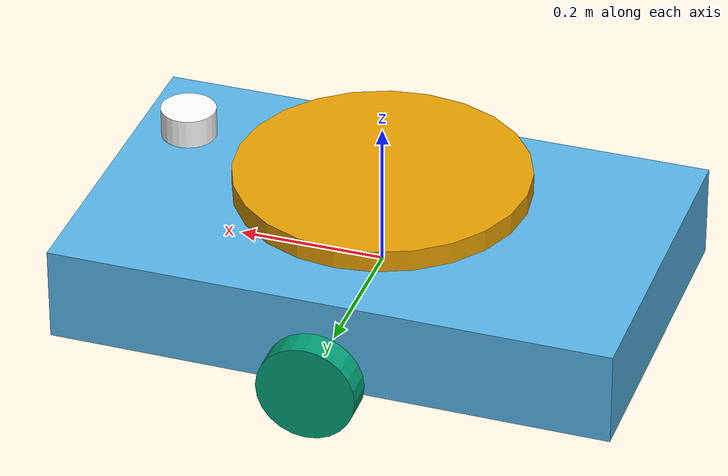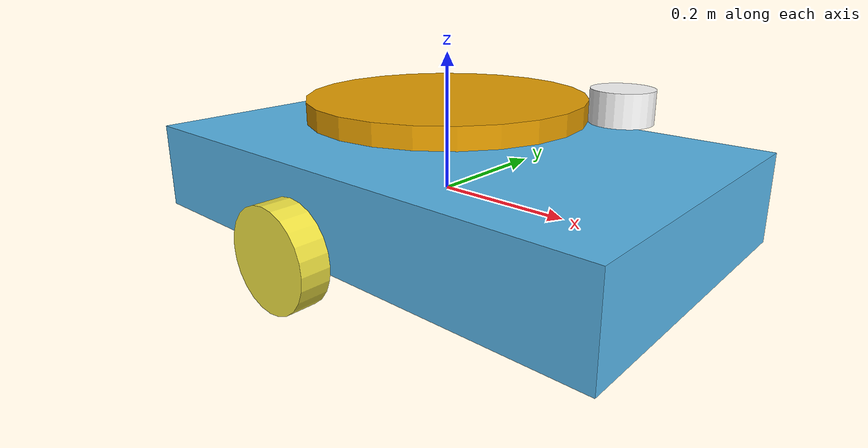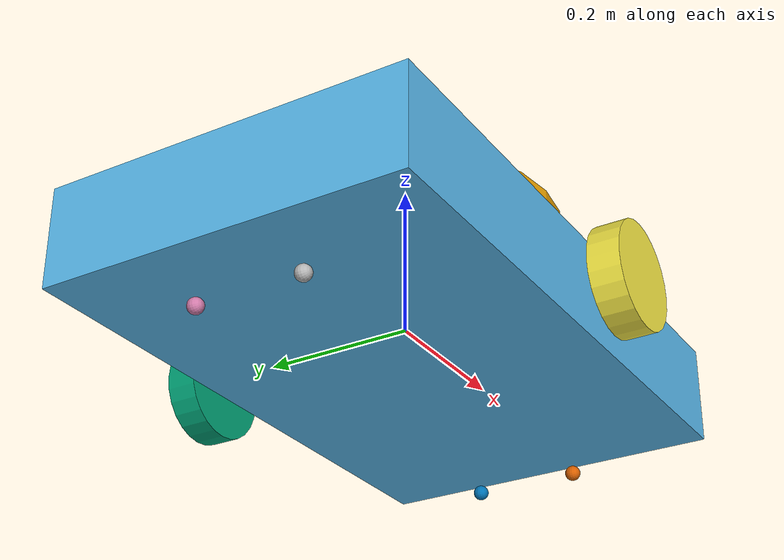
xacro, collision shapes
<?xml version="1.0" ?>
<robot name="l1br" xmlns:xacro="http://ros.org/wiki/xacro">
    <xacro:include filename="controller/diff_drive.urdf.xacro" />
    <xacro:include filename="sensors/imu_sensor.urdf.xacro" />
    <xacro:include filename="sensors/laser_sensor.urdf.xacro" />

    <xacro:property name="base_width" value="0.47"/>
    <xacro:property name="base_length" value="0.77"/>
    <xacro:property name="base_height" value="0.13"/>
    <xacro:property name="base_mass" value="2.4"/>

    <xacro:property name="wheel_radius" value="0.0675"/>
    <xacro:property name="wheel_width" value="0.04"/>
    <xacro:property name="wheel_mass" value="1"/>

    <xacro:property name="caster_wheel_radius" value="0.01"/>
    <xacro:property name="caster_wheel_radius_visual" value="0.001"/>
    <xacro:property name="caster_wheel_mass" value="0.005"/>

    <xacro:property name="tray_radius" value="0.2"/>
    <xacro:property name="tray_width" value="0.03"/>

    <xacro:property name="piston_cylinder_width" value="0.15"/>
    <xacro:property name="piston_cylinder_radius" value="0.015"/>
    <xacro:property name="piston_cylinder_mass" value="0.2"/>

    <xacro:property name="piston_base_width" value="0.01"/>
    <xacro:property name="piston_base_radius" value="0.08"/>
    <xacro:property name="piston_base_mass" value="0.2"/>

    <xacro:macro name="base_link">
        <link name="base_footprint">
        </link>

        <gazebo reference="base_link">
        <mu1 value="0.3" />
        <mu2 value="0.3" />
        <kp value="1000000.0" />
        <kd value="100" />
        <fdir1 value="0 0 0" />
        </gazebo>

        <joint name="base_joint" type="fixed">
        <parent link="base_link"/>
        <child link="base_footprint" />
        <origin xyz="0.0 0.0 -0.0793" rpy="0 0 3.14"/>
        </joint>

        <link name="base_link">
        <visual>
            <origin xyz="0  0  0" rpy="0 0 0"/>
            <geometry>
            <mesh filename="file:///$(find ugv_robots_descriptions)/robots_description/meshes/l1br_meshes/chassis.dae" />
            </geometry>
        </visual>

        <collision>
            <origin rpy="0  0  0" xyz="0  0  0.01" />
            <geometry>
                <box size="${base_length} ${base_width} ${base_height}"/>
            </geometry>
        </collision>

        <inertial>
            <origin xyz="0  0  0.0" rpy="0 0 1.57"/>
            <mass value="${base_mass}"/>
            <inertia ixx="0.12196" ixy="0.0" ixz="0.0"
                    iyy="0.04756" iyz="0.0"
                    izz="0.16276" />
        </inertial>

        </link>
    </xacro:macro>

    <xacro:macro name="traction_wheel_link" params="prefix pos_X pos_Y pos_Z pos_r pos_p pos_y">
        <joint name="joint_${prefix}" type="continuous">
            <parent link="base_link" />
            <child link="${prefix}" />
            <origin rpy="${pos_r} ${pos_p} ${pos_y}" xyz="${pos_X} ${pos_Y} ${pos_Z}" />
            <axis xyz="1 0 0" />
        </joint>

        <gazebo reference="${prefix}">
            <selfCollide>false</selfCollide>
            <mu1>1.5</mu1>
            <mu2>1.5</mu2>
            <kp>1000000.0</kp>
            <kd>100.0</kd>
        </gazebo>

        <link name="${prefix}">
            <inertial>
                <mass value="${wheel_mass}" />
                <origin rpy="0 1.57 0" xyz="0 0 0" />
                <inertia ixx="${(2/5) * wheel_mass * (wheel_radius * wheel_radius)}" ixy="0" ixz="0"
                         iyy="${(2/5) * wheel_mass * (wheel_radius * wheel_radius)}" iyz="0"
                         izz="${(2/5) * wheel_mass * (wheel_radius * wheel_radius)}" />
            </inertial>
            <collision name="${prefix}_collision">
                <origin rpy="0 1.57 0" xyz="0 0 0" />
                <geometry>
                    <cylinder length="${wheel_width}" radius="${wheel_radius}"/>
                </geometry>
            </collision>
            <visual name="${prefix}_visual">
                <origin rpy="0 0 0" xyz="0 0 0" />
                <geometry>
                    <mesh filename="file:///$(find ugv_robots_descriptions)/robots_description/meshes/l1br_meshes/wheel.dae" scale="1 1 1" />
                </geometry>
            </visual>
        </link>
    </xacro:macro>

    <xacro:macro name="caster_wheel_link" params="prefix pos_X pos_Y pos_Z pos_r pos_p pos_y">
        <joint name="joint_${prefix}" type="continuous">
            <parent link="base_link" />
            <child link="${prefix}" />
            <origin rpy="${pos_r} ${pos_p} ${pos_y}" xyz="${pos_X} ${pos_Y} ${pos_Z}" />
            <axis xyz="1 0 0" />
        </joint>

        <gazebo reference="${prefix}">
            <selfCollide>false</selfCollide>
            <mu1>0.2</mu1>
            <mu2>0.2</mu2>
            <kp>10000000.0</kp>
            <kd>10000.0</kd>
        </gazebo>

        <link name="${prefix}">
            <inertial>
                <mass value="${caster_wheel_mass}" />
                <origin rpy="0 0 0" xyz="0 0 0" />
                <inertia ixx="${(2/5) * caster_wheel_mass * (caster_wheel_radius * caster_wheel_radius)}" ixy="0" ixz="0"
                         iyy="${(2/5) * caster_wheel_mass * (caster_wheel_radius * caster_wheel_radius)}" iyz="0"
                         izz="${(2/5) * caster_wheel_mass * (caster_wheel_radius * caster_wheel_radius)}" />
            </inertial>

            <collision name="${prefix}_collision">
                <origin rpy="0 0 0" xyz="0 0 0" />
                <geometry>
                    <sphere radius="0.01"/>
                </geometry>
            </collision>

            <visual name="${prefix}_visual">
                <origin rpy="0 0 0" xyz="0 0 0" />
                <geometry>
                    <sphere radius="${caster_wheel_radius_visual}"/>
                </geometry>
            </visual>
        </link>
    </xacro:macro>

    <xacro:macro name="tray_link">
        <link name="tray_link">
        <visual name="tray_visual">
            <origin xyz="0 0 0.0118" rpy="0 0 0"/>
            <geometry>
                <mesh filename="file:///$(find ugv_robots_descriptions)/robots_description/meshes/l1br_meshes/tray.dae" scale="1 1 1"/>
            </geometry>
        </visual>

        <collision name="tray_collision">
            <origin xyz="0 0 0.105" rpy="0 0 0"/>
            <geometry>
            <cylinder length="${tray_width}" radius="${tray_radius}"/>
            </geometry>
        </collision>

        <inertial>
            <mass value="0.5" />
            <origin rpy="0 0 0" xyz="0 0 0" />
            <inertia ixx="${(2/5) * 0.5 * (tray_radius * tray_radius)}" ixy="0.0" ixz="0.0"
                    iyy="${(2/5) * 0.5 * (tray_radius * tray_radius)}" iyz="0.0"
                    izz="${(2/5) * 0.5 * (tray_radius * tray_radius)}" />
        </inertial>
        </link>

        <gazebo reference="tray_link">
            <selfCollide>true</selfCollide>
            <mu1 value="1.5" />
            <mu2 value="1.5" />
            <kp value="10000000.0" />
            <kd value="10000" />
            <fdir1 value="0 0 0" />
        </gazebo>

        <joint name="joint_tray" type="continuous">
                <parent link="piston_base" />
                <child link="tray_link" />
                <origin rpy="0 0 0" xyz="0 0 -0.08" />
                <axis xyz="0 0 1"/>
        </joint>
    </xacro:macro>

    <xacro:macro name="piston_link">
        <gazebo reference="piston_cylinder">
            <selfCollide>false</selfCollide>
            <mu1>0.1</mu1>
            <mu2>0.1</mu2>
            <kp>10000000.0</kp>
            <kd>10000.0</kd>
        </gazebo>

        <link name="piston_cylinder">
            <visual name="piston_cylinder_visual">
                <origin xyz="0 0 0" rpy="0 0 0"/>
                <geometry>
                    <cylinder length="${piston_cylinder_width}" radius="${piston_cylinder_radius}"/>
                </geometry>
                <material name="grey">
                    <color rgba="0.2 0.2 0.2 1.0"/>
                </material>
            </visual>

            <inertial>
                <mass value="${piston_cylinder_mass}" />
                <origin rpy="0 0 0" xyz="0 0 0" />
                <inertia ixx="${(2/5) * piston_cylinder_mass * (piston_cylinder_radius * piston_cylinder_radius)}" ixy="0.0" ixz="0.0"
                        iyy="${(2/5) * piston_cylinder_mass * (piston_cylinder_radius * piston_cylinder_radius)}" iyz="0.0"
                        izz="${(2/5) * piston_cylinder_mass * (piston_cylinder_radius * piston_cylinder_radius)}" />
            </inertial>
        </link>

        <joint name="joint_piston_cylinder" type="prismatic">
                <parent link="base_link" />
                <child link="piston_cylinder" />
                <origin rpy="0 0 0" xyz="0 0 0.02" />
                <axis xyz="0 0 1"/>
                <limit effort="1000.0" lower="0" upper="0.12" velocity="0.3"/>
        </joint>

        <gazebo reference="piston_base">
            <selfCollide>false</selfCollide>
            <mu1>0.3</mu1>
            <mu2>0.3</mu2>
            <kp>10000000.0</kp>
            <kd>10000.0</kd>
        </gazebo>

        <link name="piston_base">
            <visual name="piston_base_visual">
                <origin xyz="0 0 0" rpy="0 0 0"/>
                <geometry>
                    <cylinder length="${piston_base_width}" radius="${piston_base_radius}"/>
                </geometry>
                <material name="grey">
                    <color rgba="0.2 0.2 0.2 1.0"/>
                </material>
            </visual>

            <collision name="piston_base_collision">
                <origin xyz="0 0 0" rpy="0 0 0"/>
                <geometry>
                    <cylinder length="${piston_base_width}" radius="${piston_base_radius}"/>
                </geometry>
            </collision>

            <inertial>
                <mass value="${piston_base_mass}" />
                <origin rpy="0 0 0" xyz="0 0 0" />
                <inertia ixx="${(2/5) * piston_base_mass * (piston_base_radius * piston_base_radius)}" ixy="0.0" ixz="0.0"
                        iyy="${(2/5) * piston_base_mass * (piston_base_radius * piston_base_radius)}" iyz="0.0"
                        izz="${(2/5) * piston_base_mass * (piston_base_radius * piston_base_radius)}" />
            </inertial>
        </link>

        <joint name="joint_base_cylinder" type="fixed">
                <parent link="piston_cylinder" />
                <child link="piston_base" />
                <origin rpy="0 0 0" xyz="0 0 0.08" />
        </joint>
    </xacro:macro>

    <xacro:base_link/>

    <xacro:traction_wheel_link prefix="left_wheel_link" pos_X="0" pos_Y="0.296395" pos_Z="-0.0118" pos_r="0" pos_p="0" pos_y="1.57" />
    <xacro:traction_wheel_link prefix="right_wheel_link" pos_X="0" pos_Y="-0.296395" pos_Z="-0.0118" pos_r="0" pos_p="0" pos_y="1.57" />

    <xacro:caster_wheel_link prefix="back_left_caster_wheel_link" pos_X="0.32" pos_Y="0.07" pos_Z="-0.092" pos_r="-1.57" pos_p="0" pos_y="0" />
    <xacro:caster_wheel_link prefix="back_right_caster_wheel_link" pos_X="0.32" pos_Y="-0.07" pos_Z="-0.092" pos_r="-1.57" pos_p="0" pos_y="0" />
    <xacro:caster_wheel_link prefix="front_left_caster_wheel_link" pos_X="-0.32" pos_Y="0.07" pos_Z="-0.092" pos_r="-1.57" pos_p="0" pos_y="0" />
    <xacro:caster_wheel_link prefix="front_right_caster_wheel_link" pos_X="-0.32" pos_Y="-0.07" pos_Z="-0.092" pos_r="-1.57" pos_p="0" pos_y="0" />

    <xacro:tray_link/>

    <xacro:piston_link/>

    <xacro:imu_sensor
        topic="l1br/imu/data"
    />

    <xacro:laser_sensor
        update_rate="5"
        ray_count="360"
        min_angle="0"
        max_angle="6.28"
        min_range="0.12"
        max_range="8.0"
        pos_x="0.27"
        pos_y="0"
        pos_z="0.188"
        topic="l1br/scan"
    />

    <xacro:diff_drive_controller
        left_joint="joint_left_wheel"
        right_joint="joint_right_wheel"
        control_params="$(find ugv_robots_descriptions)/robots_description/controller/control_params/l1br_control_params.yaml"
    />
</robot>

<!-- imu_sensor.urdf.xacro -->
<robot xmlns:xacro="http://ros.org/wiki/xacro">
    <xacro:macro name="imu_sensor">
        <link name="imu_link"/>
        <joint name="imu_to_body" type="fixed">
            <parent link="base_link"/>
            <child link="imu_link"/>
            <origin xyz="0 0 0" rpy="0 0 0"/>
        </joint>

       <gazebo reference="imu_link">
        <gravity>true</gravity>
            <sensor name="imu_sensor" type="imu">
                <always_on>true</always_on>
                <update_rate>20</update_rate>
                <visualize>true</visualize>
                <imu>
                <angular_velocity>
                    <x>
                    <noise type="gaussian">
                        <mean>0.0</mean>
                        <stddev>2e-4</stddev>
                        <bias_mean>0.0000075</bias_mean>
                        <bias_stddev>0.0000008</bias_stddev>
                    </noise>
                    </x>
                    <y>
                    <noise type="gaussian">
                        <mean>0.0</mean>
                        <stddev>2e-4</stddev>
                        <bias_mean>0.0000075</bias_mean>
                        <bias_stddev>0.0000008</bias_stddev>
                    </noise>
                    </y>
                    <z>
                    <noise type="gaussian">
                        <mean>0.0</mean>
                        <stddev>2e-4</stddev>
                        <bias_mean>0.0000075</bias_mean>
                        <bias_stddev>0.0000008</bias_stddev>
                    </noise>
                    </z>
                </angular_velocity>
                <linear_acceleration>
                    <x>
                    <noise type="gaussian">
                        <mean>0.0</mean>
                        <stddev>1.7e-2</stddev>
                        <bias_mean>0.1</bias_mean>
                        <bias_stddev>0.001</bias_stddev>
                    </noise>
                    </x>
                    <y>
                    <noise type="gaussian">
                        <mean>0.0</mean>
                        <stddev>1.7e-2</stddev>
                        <bias_mean>0.1</bias_mean>
                        <bias_stddev>0.001</bias_stddev>
                    </noise>
                    </y>
                    <z>
                    <noise type="gaussian">
                        <mean>0.0</mean>
                        <stddev>1.7e-2</stddev>
                        <bias_mean>0.1</bias_mean>
                        <bias_stddev>0.001</bias_stddev>
                    </noise>
                    </z>
                </linear_acceleration>
                </imu>
                <plugin filename="libgazebo_ros_imu_sensor.so" name="imu_plugin">
                    <ros>
                        <remapping>~/out:=imu/data</remapping>
                        <namespace>/oni</namespace>
                    </ros>
                    <bodyName>imu_link</bodyName>
                    <frameName>imu_link</frameName>
                    <topicName>imu/data</topicName>
                    <updateRateHZ>10.0</updateRateHZ>
                    <gaussianNoise>0.0</gaussianNoise>
                    <xyzOffset>0 0 0</xyzOffset>
                    <rpyOffset>0 0 0</rpyOffset>
                    <initial_orientation_as_reference>false</initial_orientation_as_reference>
                </plugin>
                <pose>0 0 0 0 0 0</pose>
            </sensor>
        </gazebo>
    </xacro:macro>
</robot>

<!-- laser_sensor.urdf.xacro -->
<robot xmlns:xacro="http://ros.org/wiki/xacro">
    <xacro:property name="M_PI" value="3.1415926535897931" />
    <xacro:macro name="laser_sensor" params="update_rate ray_count min_angle max_angle min_range max_range pos_x pos_y pos_z topic">
        <link name="laser_link">
            <visual>
                <origin xyz="0 0 -0.025" rpy="0 0 ${M_PI/2}"/>
                <geometry>
                    <mesh filename="file:///$(find ugv_robots_descriptions)/robots_description/meshes/rplidar.dae"/>
                </geometry>
                <material name="white">
                    <color rgba="1 1 1 1"/>
                </material>
            </visual>
            <collision>
                <origin xyz="0.003 -0.003 -0.027" rpy="0 0 ${M_PI/2}"/>
                <geometry>
                    <cylinder radius="0.0375" length="0.04"/>
                </geometry>
            </collision>
            <inertial>
                <origin xyz="0 0 0" rpy="0 0 0"/>
                <mass value="0.1"/>
                <inertia ixx="${(2/5) * 0.1 * (0.0375 * 0.0375)}" ixy="0" ixz="0"
                        iyy="${(2/5) * 0.1 * (0.0375 * 0.0375)}" iyz="0"
                        izz="${(2/5) * 0.1 * (0.0375 * 0.0375)}" />
            </inertial>
        </link>

        <joint name="base_link_to_base_link" type="fixed">
            <parent link="base_link"/>
            <child link="laser_link"/>
            <origin xyz="${pos_x} ${pos_y} ${pos_z}" rpy="0 0 0"/>
        </joint>

        <gazebo reference="laser_link">
            <visual>
                <material>
                    <ambient>0.003 0.639 0.223 1.0</ambient>
                    <diffuse>0.003 0.639 0.223 1.0</diffuse>
                    <specular>0.003 0.639 0.223 1.0</specular>
                    <emissive>0.0 0.0 0.0 0.0</emissive>
                </material>
            </visual>
        </gazebo>

        <gazebo reference="laser_link">
            <sensor type="ray" name="base_link_head_hokuyo_sensor">
                <always_on>true</always_on>
                <update_rate>${update_rate}</update_rate>
                <pose>0 0 0 0 0 0</pose>
                <visualize>false</visualize>
                <ray>
                    <scan>
                        <horizontal>
                        <samples>${ray_count}</samples>
                        <resolution>1</resolution>
                        <min_angle>${min_angle}</min_angle>
                        <max_angle>${max_angle}</max_angle>
                        </horizontal>
                    </scan>
                    <range>
                        <min>${min_range}</min>
                        <max>${max_range}</max>
                        <resolution>0.01</resolution>
                    </range>
                    <noise>
                        <type>gaussian</type>
                        <mean>0.0</mean>
                        <stddev>0.01</stddev>
                    </noise>
                </ray>
                <plugin name="base_link_gazebo_ros_head_hokuyo_controller" filename="libgazebo_ros_ray_sensor.so">
                    <ros>
                        <remapping>~/out:=${topic}</remapping>
                    </ros>
                    <output_type>sensor_msgs/LaserScan</output_type>
                    <topicName>${topic}</topicName>
                    <frame_name>laser_link</frame_name>
                    <output_type>sensor_msgs/LaserScan</output_type>
                </plugin>
            </sensor>
        </gazebo>
  </xacro:macro>
</robot>
